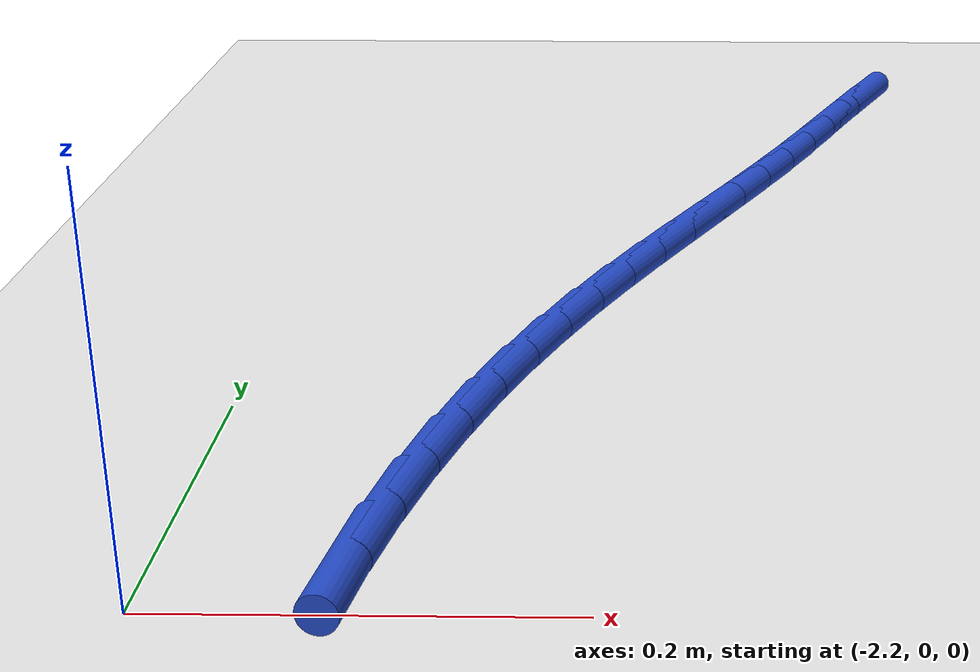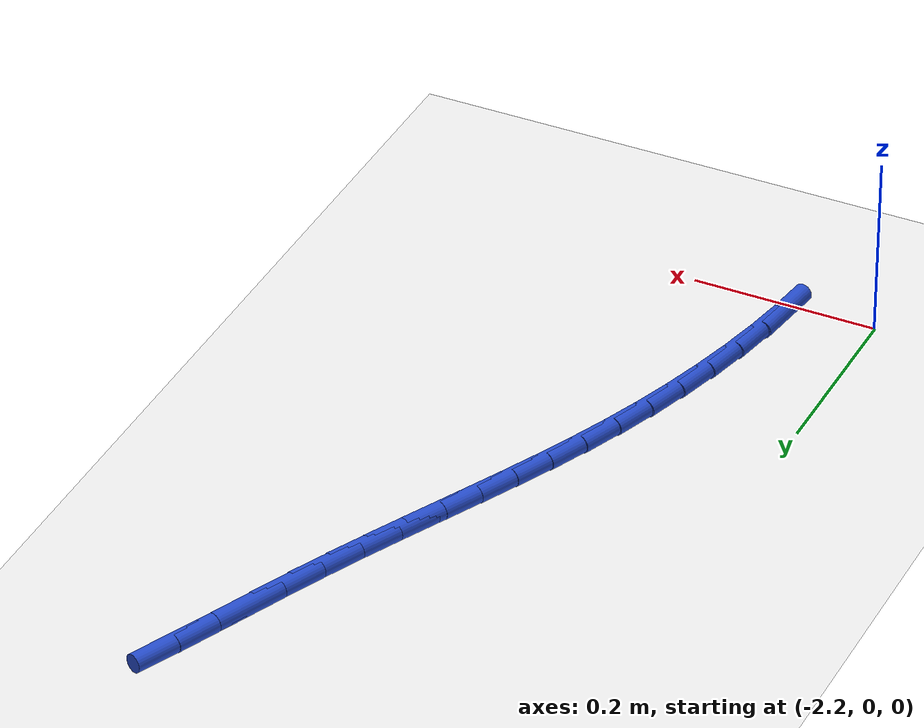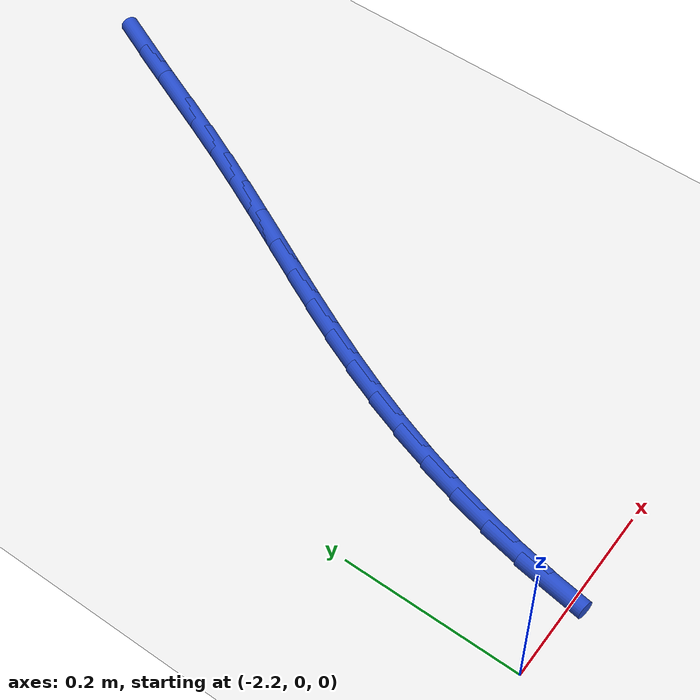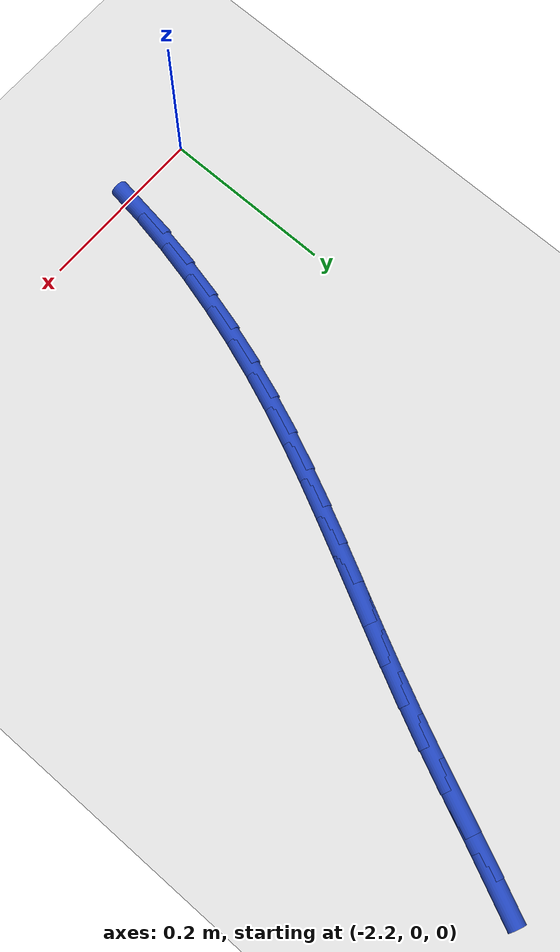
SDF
<sdf version="1.6">
 <world name="default">
  <model name="ground_plane">
   <static>1</static>
   <link name="link">
    <collision name="collision">
     <geometry><plane><normal>0 0 1</normal><size>100 100</size></plane></geometry>
     <surface><friction><ode><mu>100</mu><mu2>50</mu2></ode></friction></surface>
    </collision>
    <visual name="visual">
     <cast_shadows>0</cast_shadows>
     <geometry><plane><normal>0 0 1</normal><size>100 100</size></plane></geometry>
     <material>
      <script><uri>file://media/materials/scripts/gazebo.material</uri><name>Gazebo/WhiteGlow</name></script>
     </material>
    </visual>
   </link>
  </model>
  <model name="line">
   <link name="link_57">
    <pose>-1.8028961980170493 0.7795691914998744 0.01 0 1.57 1.1471713649403947</pose>
    <collision name="collision">
     <geometry><cylinder><radius>0.01</radius><length>0.08</length></cylinder></geometry>
    </collision>
    <visual name="visual">
     <material>
      <script><name>Gazebo/Blue</name><uri>file://media/materials/scripts/gazebo.material</uri></script>
     </material>
     <geometry><cylinder><radius>0.01</radius><length>0.08</length></cylinder></geometry>
    </visual>
   </link>
   <link name="link_58">
    <pose>-1.8227387399899864 0.735565349850649 0.01 0 1.57 1.159665550981344</pose>
    <collision name="collision">
     <geometry><cylinder><radius>0.01</radius><length>0.08</length></cylinder></geometry>
    </collision>
    <visual name="visual">
     <material>
      <script><name>Gazebo/Blue</name><uri>file://media/materials/scripts/gazebo.material</uri></script>
     </material>
     <geometry><cylinder><radius>0.01</radius><length>0.08</length></cylinder></geometry>
    </visual>
   </link>
   <link name="link_59">
    <pose>-1.8420892161221556 0.6911811061837627 0.01 0 1.57 1.1602698970088359</pose>
    <collision name="collision">
     <geometry><cylinder><radius>0.01</radius><length>0.08</length></cylinder></geometry>
    </collision>
    <visual name="visual">
     <material>
      <script><name>Gazebo/Blue</name><uri>file://media/materials/scripts/gazebo.material</uri></script>
     </material>
     <geometry><cylinder><radius>0.01</radius><length>0.08</length></cylinder></geometry>
    </visual>
   </link>
   <link name="link_60">
    <pose>-1.8612854974022817 0.6470778029255781 0.01 0 1.57 1.1487971476209038</pose>
    <collision name="collision">
     <geometry><cylinder><radius>0.01</radius><length>0.08</length></cylinder></geometry>
    </collision>
    <visual name="visual">
     <material>
      <script><name>Gazebo/Blue</name><uri>file://media/materials/scripts/gazebo.material</uri></script>
     </material>
     <geometry><cylinder><radius>0.01</radius><length>0.08</length></cylinder></geometry>
    </visual>
   </link>
   <link name="link_61">
    <pose>-1.8806644361677238 0.6039149452864928 0.01 0 1.57 1.1300412278332865</pose>
    <collision name="collision">
     <geometry><cylinder><radius>0.01</radius><length>0.08</length></cylinder></geometry>
    </collision>
    <visual name="visual">
     <material>
      <script><name>Gazebo/Blue</name><uri>file://media/materials/scripts/gazebo.material</uri></script>
     </material>
     <geometry><cylinder><radius>0.01</radius><length>0.08</length></cylinder></geometry>
    </visual>
   </link>
   <link name="link_62">
    <pose>-1.9004045233549984 0.5620664215282591 0.01 0 1.57 1.1155306119053663</pose>
    <collision name="collision">
     <geometry><cylinder><radius>0.01</radius><length>0.08</length></cylinder></geometry>
    </collision>
    <visual name="visual">
     <material>
      <script><name>Gazebo/Blue</name><uri>file://media/materials/scripts/gazebo.material</uri></script>
     </material>
     <geometry><cylinder><radius>0.01</radius><length>0.08</length></cylinder></geometry>
    </visual>
   </link>
   <link name="link_63">
    <pose>-1.920355724410357 0.5213135989600497 0.01 0 1.57 1.1072143394008402</pose>
    <collision name="collision">
     <geometry><cylinder><radius>0.01</radius><length>0.08</length></cylinder></geometry>
    </collision>
    <visual name="visual">
     <material>
      <script><name>Gazebo/Blue</name><uri>file://media/materials/scripts/gazebo.material</uri></script>
     </material>
     <geometry><cylinder><radius>0.01</radius><length>0.08</length></cylinder></geometry>
    </visual>
   </link>
   <link name="link_64">
    <pose>-1.9403271589323747 0.48136417626777095 0.01 0 1.57 1.1054943284828938</pose>
    <collision name="collision">
     <geometry><cylinder><radius>0.01</radius><length>0.08</length></cylinder></geometry>
    </collision>
    <visual name="visual">
     <material>
      <script><name>Gazebo/Blue</name><uri>file://media/materials/scripts/gazebo.material</uri></script>
     </material>
     <geometry><cylinder><radius>0.01</radius><length>0.08</length></cylinder></geometry>
    </visual>
   </link>
   <link name="link_65">
    <pose>-1.9601279465196264 0.44192585213733065 0.01 0 1.57 1.110632686682203</pose>
    <collision name="collision">
     <geometry><cylinder><radius>0.01</radius><length>0.08</length></cylinder></geometry>
    </collision>
    <visual name="visual">
     <material>
      <script><name>Gazebo/Blue</name><uri>file://media/materials/scripts/gazebo.material</uri></script>
     </material>
     <geometry><cylinder><radius>0.01</radius><length>0.08</length></cylinder></geometry>
    </visual>
   </link>
   <link name="link_66">
    <pose>-1.979567206770688 0.4027063252546359 0.01 0 1.57 1.1227346157262308</pose>
    <collision name="collision">
     <geometry><cylinder><radius>0.01</radius><length>0.08</length></cylinder></geometry>
    </collision>
    <visual name="visual">
     <material>
      <script><name>Gazebo/Blue</name><uri>file://media/materials/scripts/gazebo.material</uri></script>
     </material>
     <geometry><cylinder><radius>0.01</radius><length>0.08</length></cylinder></geometry>
    </visual>
   </link>
   <link name="link_67">
    <pose>-1.9984540592841333 0.36341329430559355 0.01 0 1.57 1.1417302962480769</pose>
    <collision name="collision">
     <geometry><cylinder><radius>0.01</radius><length>0.08</length></cylinder></geometry>
    </collision>
    <visual name="visual">
     <material>
      <script><name>Gazebo/Blue</name><uri>file://media/materials/scripts/gazebo.material</uri></script>
     </material>
     <geometry><cylinder><radius>0.01</radius><length>0.08</length></cylinder></geometry>
    </visual>
   </link>
   <link name="link_68">
    <pose>-2.016597623658538 0.3237544579761116 0.01 0 1.57 1.1673574761366174</pose>
    <collision name="collision">
     <geometry><cylinder><radius>0.01</radius><length>0.08</length></cylinder></geometry>
    </collision>
    <visual name="visual">
     <material>
      <script><name>Gazebo/Blue</name><uri>file://media/materials/scripts/gazebo.material</uri></script>
     </material>
     <geometry><cylinder><radius>0.01</radius><length>0.08</length></cylinder></geometry>
    </visual>
   </link>
   <link name="link_69">
    <pose>-2.0338070194924764 0.28343751495209696 0.01 0 1.57 1.1989408204281315</pose>
    <collision name="collision">
     <geometry><cylinder><radius>0.01</radius><length>0.08</length></cylinder></geometry>
    </collision>
    <visual name="visual">
     <material>
      <script><name>Gazebo/Blue</name><uri>file://media/materials/scripts/gazebo.material</uri></script>
     </material>
     <geometry><cylinder><radius>0.01</radius><length>0.08</length></cylinder></geometry>
    </visual>
   </link>
   <link name="link_70">
    <pose>-2.0498940034449307 0.242188769001571 0.01 0 1.57 1.2333861281324308</pose>
    <collision name="collision">
     <geometry><cylinder><radius>0.01</radius><length>0.08</length></cylinder></geometry>
    </collision>
    <visual name="visual">
     <material>
      <script><name>Gazebo/Blue</name><uri>file://media/materials/scripts/gazebo.material</uri></script>
     </material>
     <geometry><cylinder><radius>0.01</radius><length>0.08</length></cylinder></geometry>
    </visual>
   </link>
   <link name="link_71">
    <pose>-2.0647042041639168 0.19997349875098955 0.01 0 1.57 1.2689880031820608</pose>
    <collision name="collision">
     <geometry><cylinder><radius>0.01</radius><length>0.08</length></cylinder></geometry>
    </collision>
    <visual name="visual">
     <material>
      <script><name>Gazebo/Blue</name><uri>file://media/materials/scripts/gazebo.material</uri></script>
     </material>
     <geometry><cylinder><radius>0.01</radius><length>0.08</length></cylinder></geometry>
    </visual>
   </link>
   <link name="link_72">
    <pose>-2.0781067341207735 0.1569226667300592 0.01 0 1.57 1.3059903645979478</pose>
    <collision name="collision">
     <geometry><cylinder><radius>0.01</radius><length>0.08</length></cylinder></geometry>
    </collision>
    <visual name="visual">
     <material>
      <script><name>Gazebo/Blue</name><uri>file://media/materials/scripts/gazebo.material</uri></script>
     </material>
     <geometry><cylinder><radius>0.01</radius><length>0.08</length></cylinder></geometry>
    </visual>
   </link>
   <link name="link_73">
    <pose>-2.0899711774406478 0.11317056309715195 0.01 0 1.57 1.344673266465697</pose>
    <collision name="collision">
     <geometry><cylinder><radius>0.01</radius><length>0.08</length></cylinder></geometry>
    </collision>
    <visual name="visual">
     <material>
      <script><name>Gazebo/Blue</name><uri>file://media/materials/scripts/gazebo.material</uri></script>
     </material>
     <geometry><cylinder><radius>0.01</radius><length>0.08</length></cylinder></geometry>
    </visual>
   </link>
   <link name="link_74">
    <pose>-2.1001671182486845 0.06885147801064018 0.01 0 1.57 1.3853174714504881</pose>
    <collision name="collision">
     <geometry><cylinder><radius>0.01</radius><length>0.08</length></cylinder></geometry>
    </collision>
    <visual name="visual">
     <material>
      <script><name>Gazebo/Blue</name><uri>file://media/materials/scripts/gazebo.material</uri></script>
     </material>
     <geometry><cylinder><radius>0.01</radius><length>0.08</length></cylinder></geometry>
    </visual>
   </link>
   <link name="link_75">
    <pose>-2.1085641406700293 0.02409970162889607 0.01 0 1.57 1.4282043486091807</pose>
    <collision name="collision">
     <geometry><cylinder><radius>0.01</radius><length>0.08</length></cylinder></geometry>
    </collision>
    <visual name="visual">
     <material>
      <script><name>Gazebo/Blue</name><uri>file://media/materials/scripts/gazebo.material</uri></script>
     </material>
     <geometry><cylinder><radius>0.01</radius><length>0.08</length></cylinder></geometry>
    </visual>
   </link>
  </model>
 </world>
</sdf>
